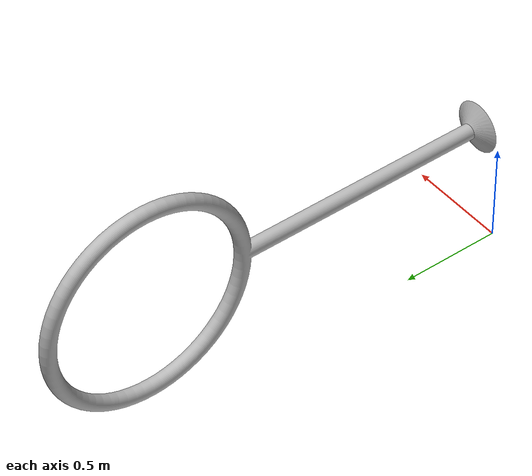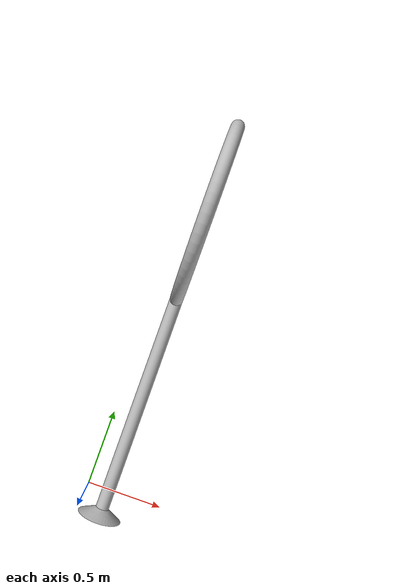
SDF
<?xml version='1.0'?>
<sdf version="1.5">
  <model name="hoop5">
    <pose>0 0 0 0 0 0</pose>
    <static>true</static>
    <link name="link">
     <collision name="collision">
        <geometry>
          <mesh>
	    <uri>model://hoop5/meshes/hoop5.STL</uri>
   <scale>0.00254 0.00254 0.00254</scale>
    </mesh>
	</geometry>
      </collision>
      <visual name="visual">
        <geometry>
          <mesh>
		  <uri>model://hoop5/meshes/hoop5.STL</uri>
		  <scale>0.00254 0.00254 0.00254</scale>
          </mesh>
        </geometry>
      </visual>
    </link>
  </model>
</sdf>
